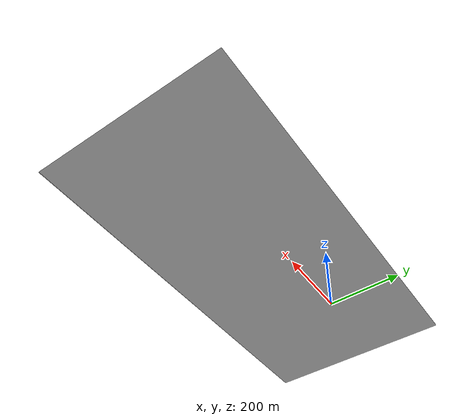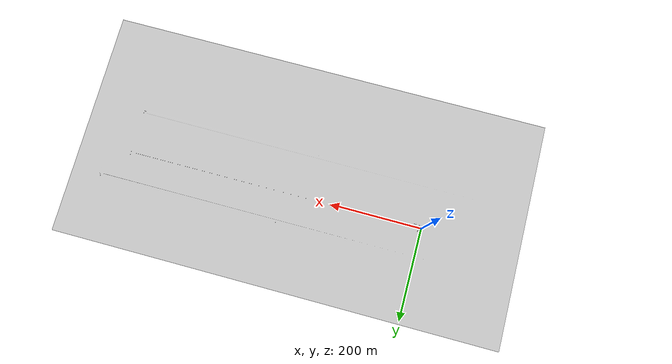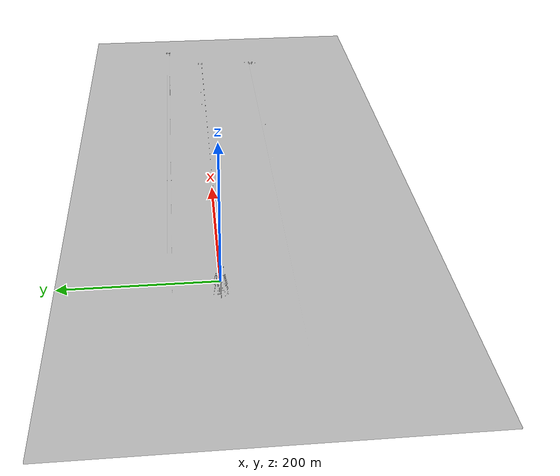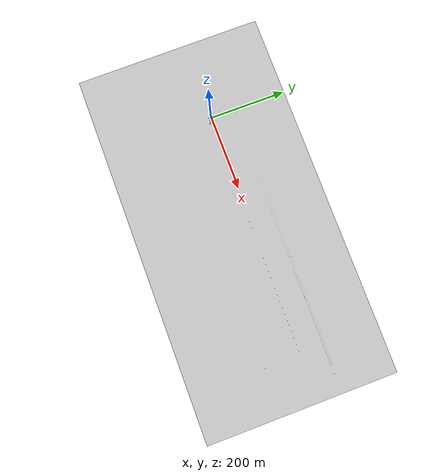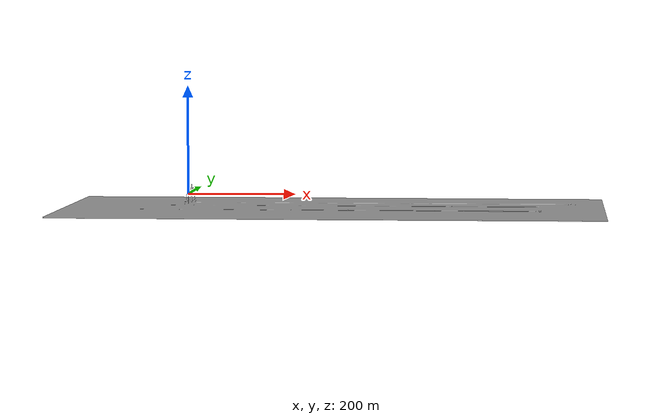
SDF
<?xml version="1.0"?>
<sdf version="1.4">
    <model name="oil_rig_manifold">
        <pose>0 0 0 0 0 0</pose>
        <static>true</static>
        <link name="oil_rig_manifold_body">
            <visual name="visual">
                <geometry>
                    <mesh>
                        <uri>model://oil_rig_manifold/visual_texture.osgb</uri>
                    </mesh>
                </geometry>
            </visual>
            <collision name="collision">
                <geometry>
                    <mesh>
                        <uri>model://oil_rig_manifold/collision.stl</uri>
                    </mesh>
                </geometry>
            </collision>
            <inertial>
                <pose>0 0 -1 0 0 0</pose>
                <inertia>
                    <ixx>0.0</ixx>
                    <ixy>0</ixy>
                    <ixz>0.0</ixz>
                    <iyy>0.0</iyy>
                    <iyz>0</iyz>
                    <izz>0.0</izz>
                </inertia>
                <mass>1.0</mass>
            </inertial>
        </link>
    </model>
</sdf>
